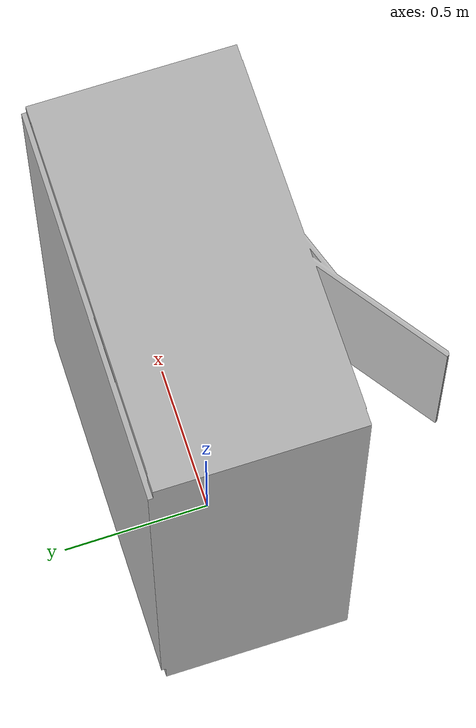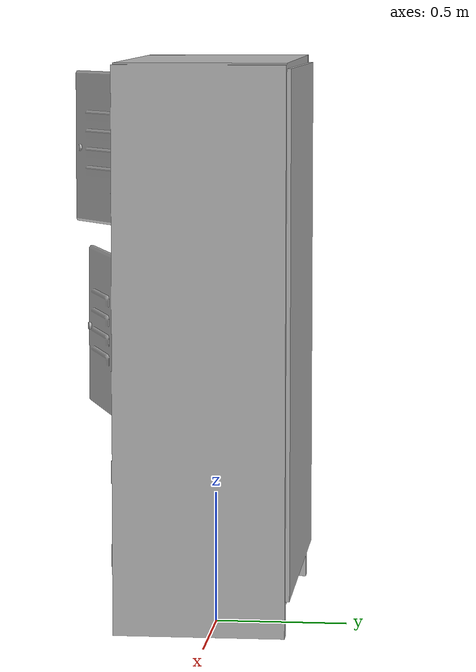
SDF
<?xml version="1.0" ?>
<sdf version="1.5">
  <model name="Armario">
    <static>true</static>
    <link name="link">
      <collision name="collision">
        <geometry>
            <mesh>
                <uri>model://armario/meshes/armario.stl</uri>
                <scale>1 1 1</scale>
            </mesh>
        </geometry>
      </collision>
      <visual name="visual">
        <geometry>
          <mesh>
            <uri>model://armario/meshes/armario.stl</uri>
            <scale>1 1 1</scale>
          </mesh>
        </geometry>
      </visual>
    </link>
    <gazebo reference="link">
      <material>Gazebo/White</material>
    </gazebo>
  </model>
</sdf>
